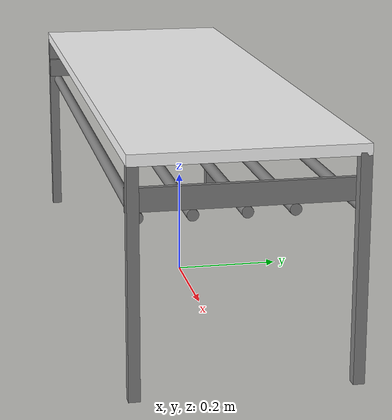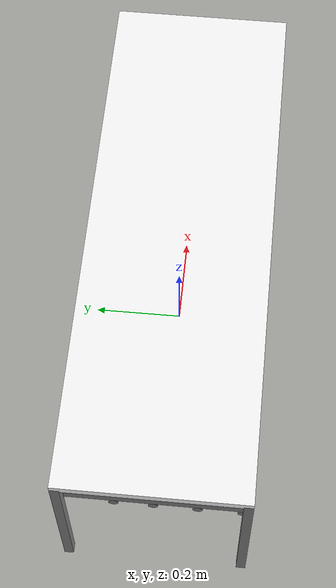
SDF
<?xml version="1.0" ?>
<sdf version="1.5">
  <model name="wrc_long_table">
    <static>true</static>
    <link name="link">
      <inertial>
        <mass>1.0</mass>
      </inertial>
      <collision name="top">
        <pose>0 0 0.39 0 0 0</pose>
        <geometry>
          <box>
            <size>1.20 0.40 0.02</size>
          </box>
        </geometry>
      </collision>
      <visual name="top_v">
        <pose>0 0 0.39 0 0 0</pose>
        <geometry>
          <box>
            <size>1.20 0.40 0.02</size>
          </box>
        </geometry>
        <material>
          <name>white</name>
          <ambient>1.0 1.0 1.0 1.0</ambient>
          <diffuse>1.0 1.0 1.0 1.0</diffuse>
          <specular>0.1 0.1 0.1 1.0</specular>
          <shininess>5.0</shininess>
        </material>
      </visual>
      <collision name="leg1">
        <pose>0.59 0.19 0.185 0 0 0</pose>
        <geometry>
          <box>
            <size>0.02 0.02 0.40</size>
          </box>
        </geometry>
      </collision>
      <visual name="leg1_v">
        <pose>0.59 0.19 0.185 0 0 0</pose>
        <geometry>
          <box>
            <size>0.02 0.02 0.40</size>
          </box>
        </geometry>
        <material>
          <name>gray</name>
          <ambient>0.5 0.5 0.5 1.0</ambient>
          <diffuse>0.5 0.5 0.5 1.0</diffuse>
          <specular>0.1 0.1 0.1 1.0</specular>
          <shininess>5.0</shininess>
        </material>
      </visual>
      <collision name="leg2">
        <pose>-0.59 0.19 0.185 0 0 0</pose>
        <geometry>
          <box>
            <size>0.02 0.02 0.40</size>
          </box>
        </geometry>
      </collision>
      <visual name="leg2_v">
        <pose>-0.59 0.19 0.185 0 0 0</pose>
        <geometry>
          <box>
            <size>0.02 0.02 0.40</size>
          </box>
        </geometry>
        <material>
          <name>gray</name>
          <ambient>0.5 0.5 0.5 1.0</ambient>
          <diffuse>0.5 0.5 0.5 1.0</diffuse>
          <specular>0.1 0.1 0.1 1.0</specular>
          <shininess>5.0</shininess>
        </material>
      </visual>
      <collision name="leg3">
        <pose>0.59 -0.19 0.185 0 0 0</pose>
        <geometry>
          <box>
            <size>0.02 0.02 0.40</size>
          </box>
        </geometry>
      </collision>
      <visual name="leg3_v">
        <pose>0.59 -0.19 0.185 0 0 0</pose>
        <geometry>
          <box>
            <size>0.02 0.02 0.40</size>
          </box>
        </geometry>
        <material>
          <name>gray</name>
          <ambient>0.5 0.5 0.5 1.0</ambient>
          <diffuse>0.5 0.5 0.5 1.0</diffuse>
          <specular>0.1 0.1 0.1 1.0</specular>
          <shininess>5.0</shininess>
        </material>
      </visual>
      <collision name="leg4">
        <pose>-0.59 -0.19 0.185 0 0 0</pose>
        <geometry>
          <box>
            <size>0.02 0.02 0.40</size>
          </box>
        </geometry>
      </collision>
      <visual name="leg4_v">
        <pose>-0.59 -0.19 0.185 0 0 0</pose>
        <geometry>
          <box>
            <size>0.02 0.02 0.40</size>
          </box>
        </geometry>
        <material>
          <name>gray</name>
          <ambient>0.5 0.5 0.5 1.0</ambient>
          <diffuse>0.5 0.5 0.5 1.0</diffuse>
          <specular>0.1 0.1 0.1 1.0</specular>
          <shininess>5.0</shininess>
        </material>
      </visual>
      <collision name="side_panel1">
        <pose>0.575 0 0.32 0 0 0</pose>
        <geometry>
          <box>
            <size>0.01 0.40 0.04</size>
          </box>
        </geometry>
      </collision>
      <visual name="side_panel1_v">
        <pose>0.575 0 0.32 0 0 0</pose>
        <geometry>
          <box>
            <size>0.01 0.40 0.04</size>
          </box>
        </geometry>
        <material>
          <name>gray</name>
          <ambient>0.5 0.5 0.5 1.0</ambient>
          <diffuse>0.5 0.5 0.5 1.0</diffuse>
          <specular>0.1 0.1 0.1 1.0</specular>
          <shininess>5.0</shininess>
        </material>
      </visual>
      <collision name="side_panel2">
        <pose>-0.575 0 0.32 0 0 0</pose>
        <geometry>
          <box>
            <size>0.01 0.40 0.04</size>
          </box>
        </geometry>
      </collision>
      <visual name="side_panel2_v">
        <pose>-0.575 0 0.32 0 0 0</pose>
        <geometry>
          <box>
            <size>0.01 0.40 0.04</size>
          </box>
        </geometry>
        <material>
          <name>gray</name>
          <ambient>0.5 0.5 0.5 1.0</ambient>
          <diffuse>0.5 0.5 0.5 1.0</diffuse>
          <specular>0.1 0.1 0.1 1.0</specular>
          <shininess>5.0</shininess>
        </material>
      </visual>
      <collision name="bar1">
        <pose>0 0.20 0.29 0 1.57 0</pose>
        <geometry>
          <cylinder>
            <radius>0.01</radius>
            <length>1.16</length>
          </cylinder>
        </geometry>
      </collision>
      <visual name="bar1_v">
        <pose>0 0.19 0.29 0 1.57 0</pose>
        <geometry>
          <cylinder>
            <radius>0.01</radius>
            <length>1.16</length>
          </cylinder>
        </geometry>
        <material>
          <name>gray</name>
          <ambient>0.5 0.5 0.5 1.0</ambient>
          <diffuse>0.5 0.5 0.5 1.0</diffuse>
          <specular>0.1 0.1 0.1 1.0</specular>
          <shininess>5.0</shininess>
        </material>
      </visual>
      <collision name="bar2">
        <pose>0 0.08 0.29 0 1.57 0</pose>
        <geometry>
          <cylinder>
            <radius>0.01</radius>
            <length>1.16</length>
          </cylinder>
        </geometry>
      </collision>
      <visual name="bar2_v">
        <pose>0 0.08 0.29 0 1.57 0</pose>
        <geometry>
          <cylinder>
            <radius>0.01</radius>
            <length>1.16</length>
          </cylinder>
        </geometry>
        <material>
          <name>gray</name>
          <ambient>0.5 0.5 0.5 1.0</ambient>
          <diffuse>0.5 0.5 0.5 1.0</diffuse>
          <specular>0.1 0.1 0.1 1.0</specular>
          <shininess>5.0</shininess>
        </material>
      </visual>
      <collision name="bar3">
        <pose>0 0 0.29 0 1.57 0</pose>
        <geometry>
          <cylinder>
            <radius>0.01</radius>
            <length>1.16</length>
          </cylinder>
        </geometry>
      </collision>
      <visual name="bar3_v">
        <pose>0 0 0.29 0 1.57 0</pose>
        <geometry>
          <cylinder>
            <radius>0.01</radius>
            <length>1.16</length>
          </cylinder>
        </geometry>
        <material>
          <name>gray</name>
          <ambient>0.5 0.5 0.5 1.0</ambient>
          <diffuse>0.5 0.5 0.5 1.0</diffuse>
          <specular>0.1 0.1 0.1 1.0</specular>
          <shininess>5.0</shininess>
        </material>
      </visual>
      <collision name="bar4">
        <pose>0 -0.08 0.29 0 1.57 0</pose>
        <geometry>
          <cylinder>
            <radius>0.01</radius>
            <length>1.16</length>
          </cylinder>
        </geometry>
      </collision>
      <visual name="bar4_v">
        <pose>0 -0.09 0.29 0 1.57 0</pose>
        <geometry>
          <cylinder>
            <radius>0.01</radius>
            <length>1.16</length>
          </cylinder>
        </geometry>
        <material>
          <name>gray</name>
          <ambient>0.5 0.5 0.5 1.0</ambient>
          <diffuse>0.5 0.5 0.5 1.0</diffuse>
          <specular>0.1 0.1 0.1 1.0</specular>
          <shininess>5.0</shininess>
        </material>
      </visual>
      <collision name="bar5">
        <pose>0 -0.18 0.29 0 1.57 0</pose>
        <geometry>
          <cylinder>
            <radius>0.01</radius>
            <length>1.16</length>
          </cylinder>
        </geometry>
      </collision>
      <visual name="bar5_v">
        <pose>0 -0.18 0.29 0 1.57 0</pose>
        <geometry>
          <cylinder>
            <radius>0.01</radius>
            <length>1.16</length>
          </cylinder>
        </geometry>
        <material>
          <name>gray</name>
          <ambient>0.5 0.5 0.5 1.0</ambient>
          <diffuse>0.5 0.5 0.5 1.0</diffuse>
          <specular>0.1 0.1 0.1 1.0</specular>
          <shininess>5.0</shininess>
        </material>
      </visual>
    </link>
  </model>
</sdf>
